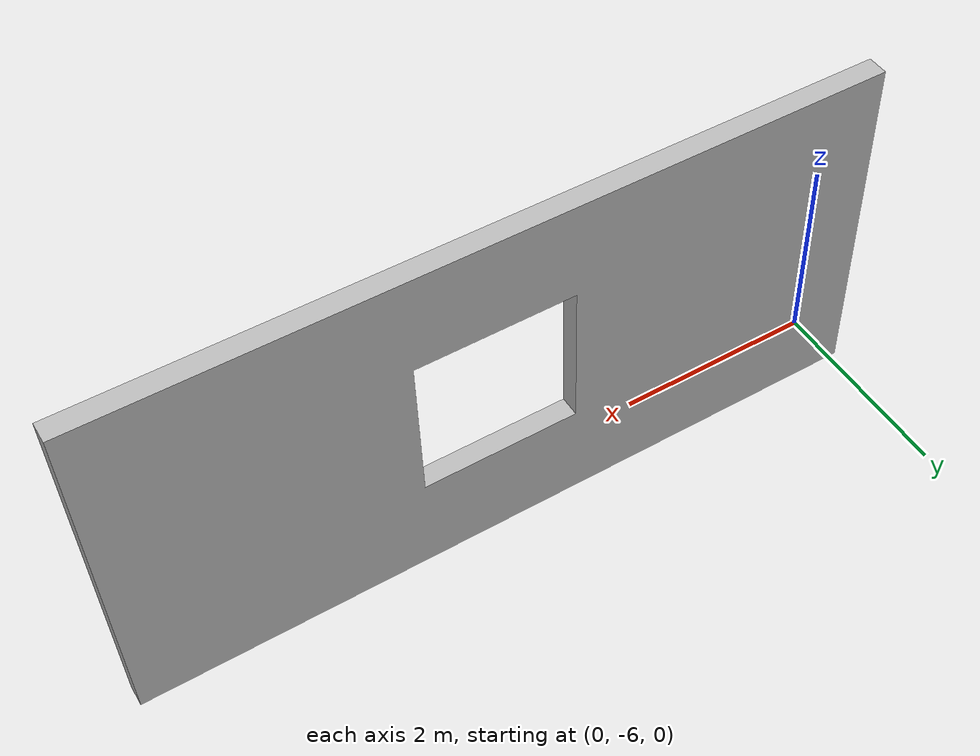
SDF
<?xml version="1.0"?>
<sdf version="1.5">
    <model name="house3">
        <static>true</static>
        <link name="link">
            <collision name="collision1">
                <pose>0 0 0 0 0 0</pose>
                <geometry>
                    <mesh>
                        <uri>model://house_scene_1_wall_w_window_new/meshes/scene_walls_in2.dae</uri>
                    </mesh>
                </geometry>
            </collision>
            <visual name="visual_walls3">
              <pose>0 0 0 0 0 0</pose>
              <geometry>
              <mesh>
                 <uri>model://house_scene_1_wall_w_window_new/meshes/scene_walls_in2.dae</uri>
              </mesh>
              </geometry>
             </visual>
        </link>
    </model>
</sdf>
